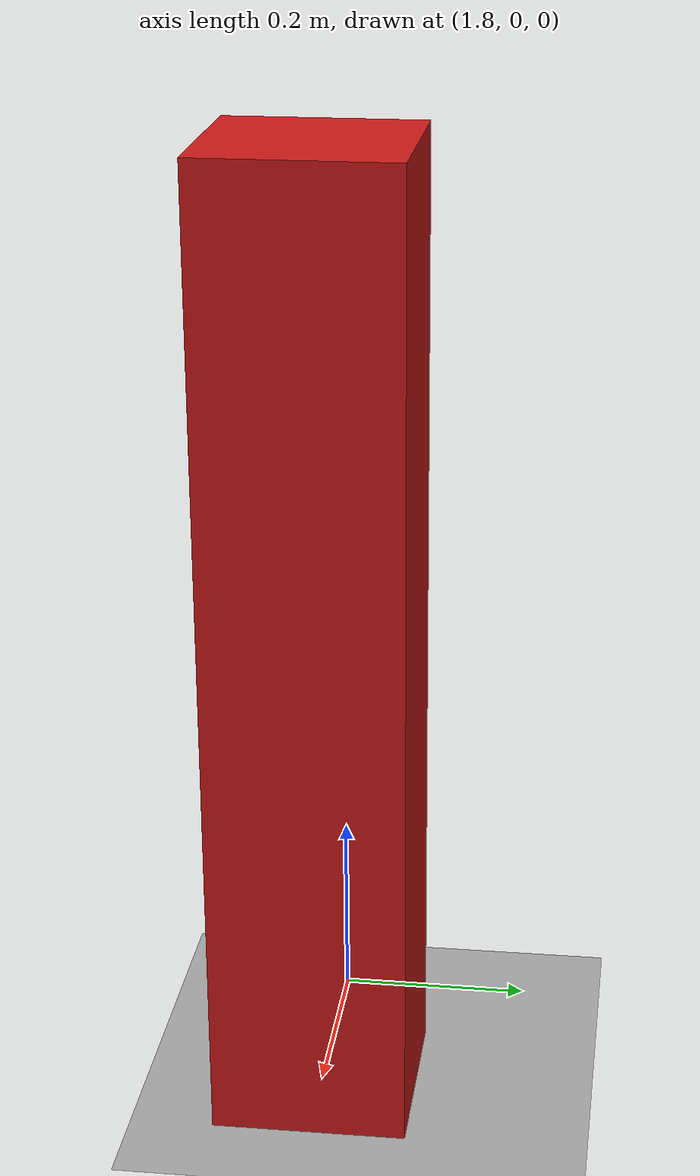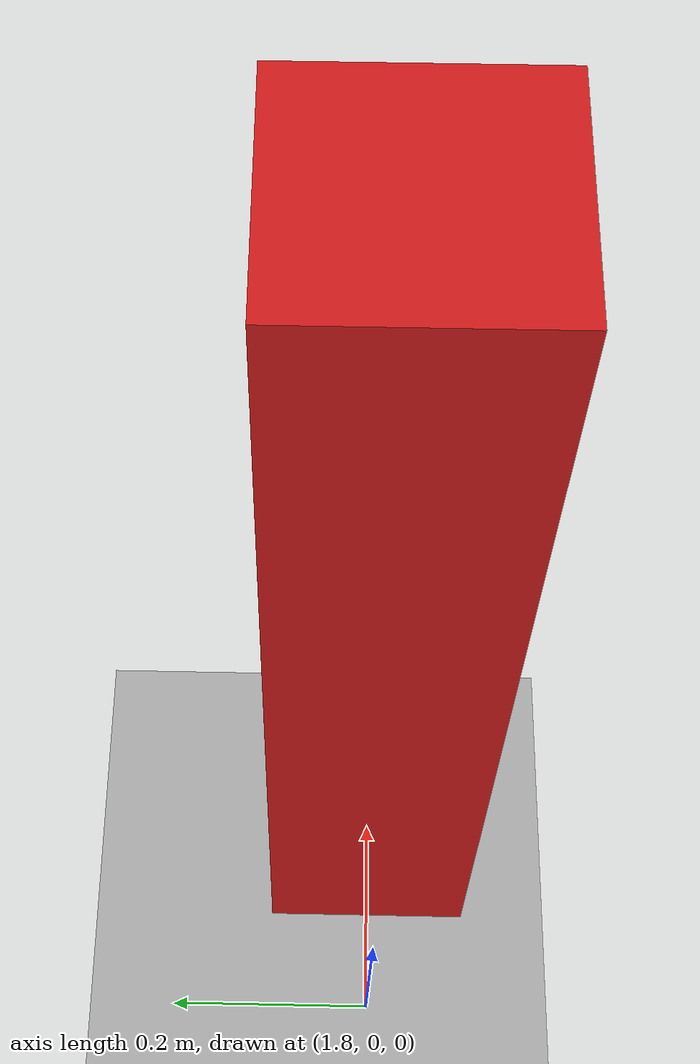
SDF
<?xml version="1.0"?>
<sdf version="1.9">
  <world name="gaia_lab">
    <physics name="lab_physics" type="ignored">
      <max_step_size>0.001</max_step_size><real_time_factor>1</real_time_factor>
    </physics>
    <gravity>0 0 -9.81</gravity>
    <plugin filename="gz-sim-physics-system" name="gz::sim::systems::Physics"/>
    <plugin filename="gz-sim-user-commands-system" name="gz::sim::systems::UserCommands"/>
    <plugin filename="gz-sim-scene-broadcaster-system" name="gz::sim::systems::SceneBroadcaster"/>
    <plugin filename="gz-sim-imu-system" name="gz::sim::systems::Imu"/>
    <plugin filename="gz-sim-sensors-system" name="gz::sim::systems::Sensors">
      <render_engine>ogre2</render_engine>
    </plugin>
    <light name="sun" type="directional">
      <pose>0 0 10 0 0 0</pose><cast_shadows>true</cast_shadows>
      <diffuse>0.8 0.8 0.8 1</diffuse><specular>0.2 0.2 0.2 1</specular>
      <direction>-0.5 0.2 -1</direction>
    </light>
    <model name="floor">
      <static>true</static>
      <link name="floor_link">
        <collision name="collision"><geometry><plane><normal>0 0 1</normal><size>20 20</size></plane></geometry></collision>
        <visual name="visual">
          <geometry><plane><normal>0 0 1</normal><size>20 20</size></plane></geometry>
          <material><ambient>0.65 0.65 0.65 1</ambient><diffuse>0.65 0.65 0.65 1</diffuse></material>
        </visual>
      </link>
    </model>
    <model name="visual_target">
      <static>true</static><pose>2 0 0.5 0 0 0</pose>
      <link name="target">
        <visual name="red_box">
          <geometry><box><size>0.2 0.2 1</size></box></geometry>
          <material><ambient>0.8 0.1 0.1 1</ambient><diffuse>0.8 0.1 0.1 1</diffuse></material>
        </visual>
        <collision name="collision"><geometry><box><size>0.2 0.2 1</size></box></geometry></collision>
      </link>
    </model>
  </world>
</sdf>
